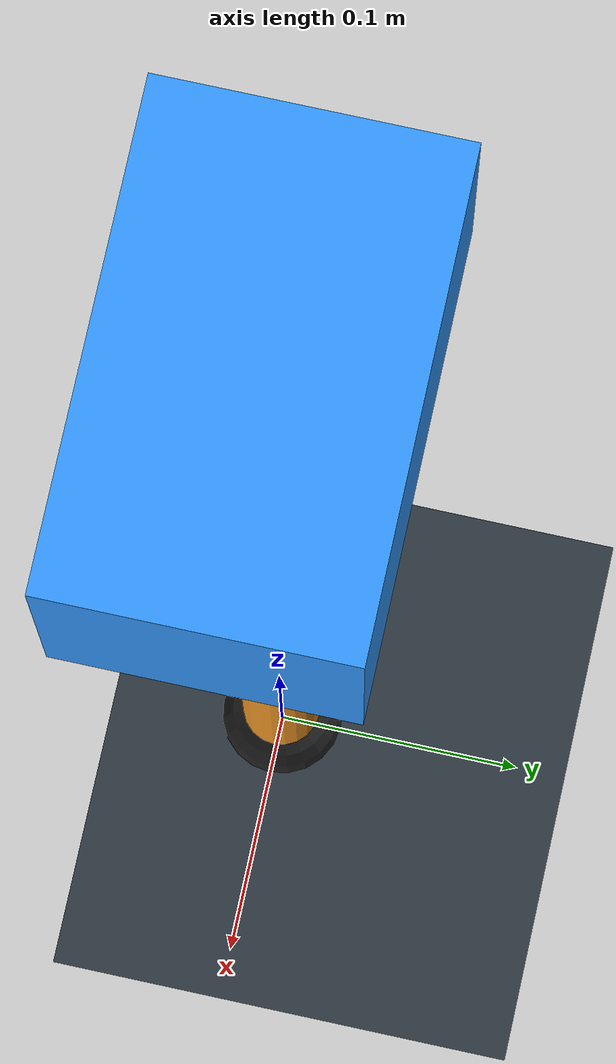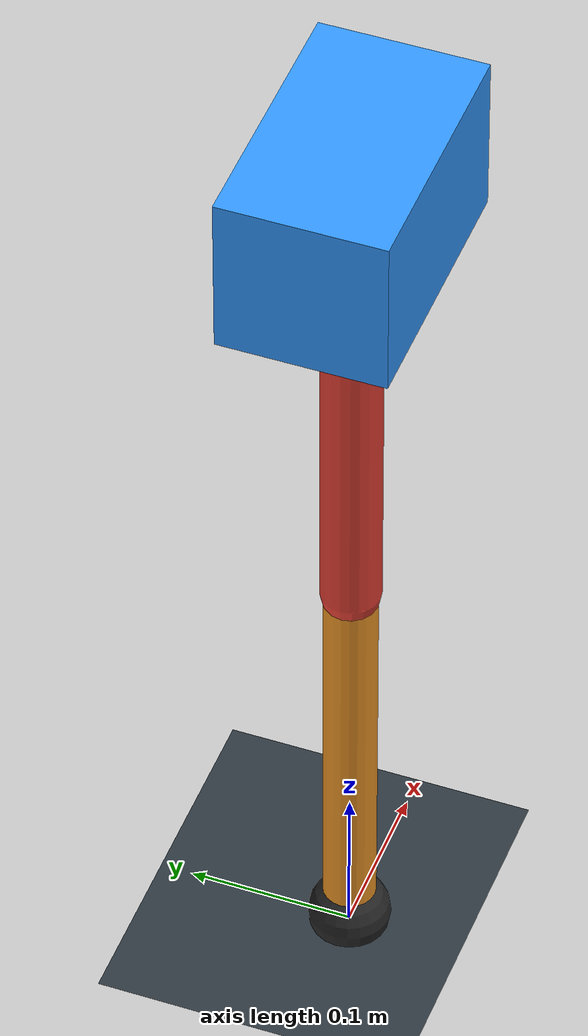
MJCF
<mujoco model="single_axis_two_bar">
  <compiler angle="radian" inertiafromgeom="true"/>
  <option timestep="0.001" integrator="implicitfast" gravity="0 0 -9.81"/>
  <default>
    <joint damping="0.08"/>
    <geom friction="1.2 0.01 0.0001" condim="3"/>
  </default>
  <worldbody>
    <geom name="floor" type="plane" size="5 5 0.1" rgba="0.18 0.22 0.25 1"/>
    <body name="carriage" pos="0 0 0.5733736395036771">
      <joint name="pole_slide" type="slide" axis="0 0 1"/>
      <geom name="payload" type="box" size="0.08 0.05 0.05" mass="2.5869093147452276" rgba="0.2 0.6 1 1"/>
      <body name="thigh" pos="0 0 0">
        <joint name="hip" type="hinge" axis="0 1 0"/>
        <geom name="thigh_link" type="capsule" fromto="0 0 0 0 0 -0.2974551003761775" size="0.018" mass="0.21194068954039438" rgba="0.9 0.25 0.2 1"/>
        <body name="shank" pos="0 0 -0.2974551003761775">
          <joint name="knee" type="hinge" axis="0 1 0"/>
          <geom name="shank_link" type="capsule" fromto="0 0 0 0 0 -0.2678785485966855" size="0.016" mass="0.19086700557785594" rgba="0.95 0.6 0.15 1"/>
          <geom name="foot" type="sphere" pos="0 0 -0.2678785485966855" size="0.025" mass="0.03" rgba="0.15 0.15 0.15 1"/>
          <site name="toe" pos="0 0 -0.2678785485966855" size="0.008"/>
        </body>
      </body>
    </body>
  </worldbody>
  <actuator>
    <motor name="hip_motor" joint="hip" ctrlrange="-29.935083594810596 29.935083594810596"/>
    <motor name="knee_motor" joint="knee" ctrlrange="-104.16560567671013 104.16560567671013"/>
  </actuator>
</mujoco>
